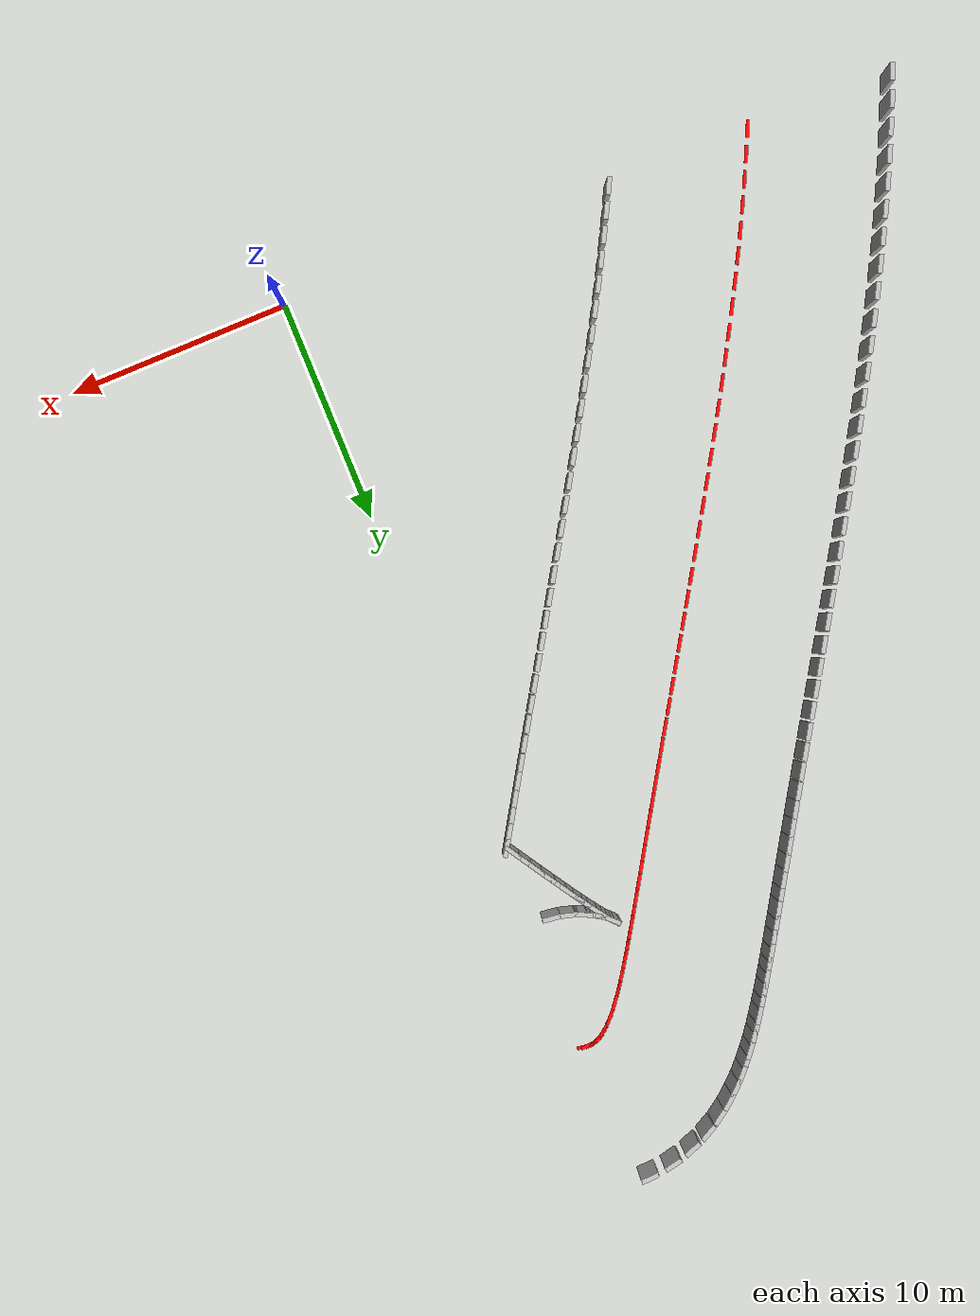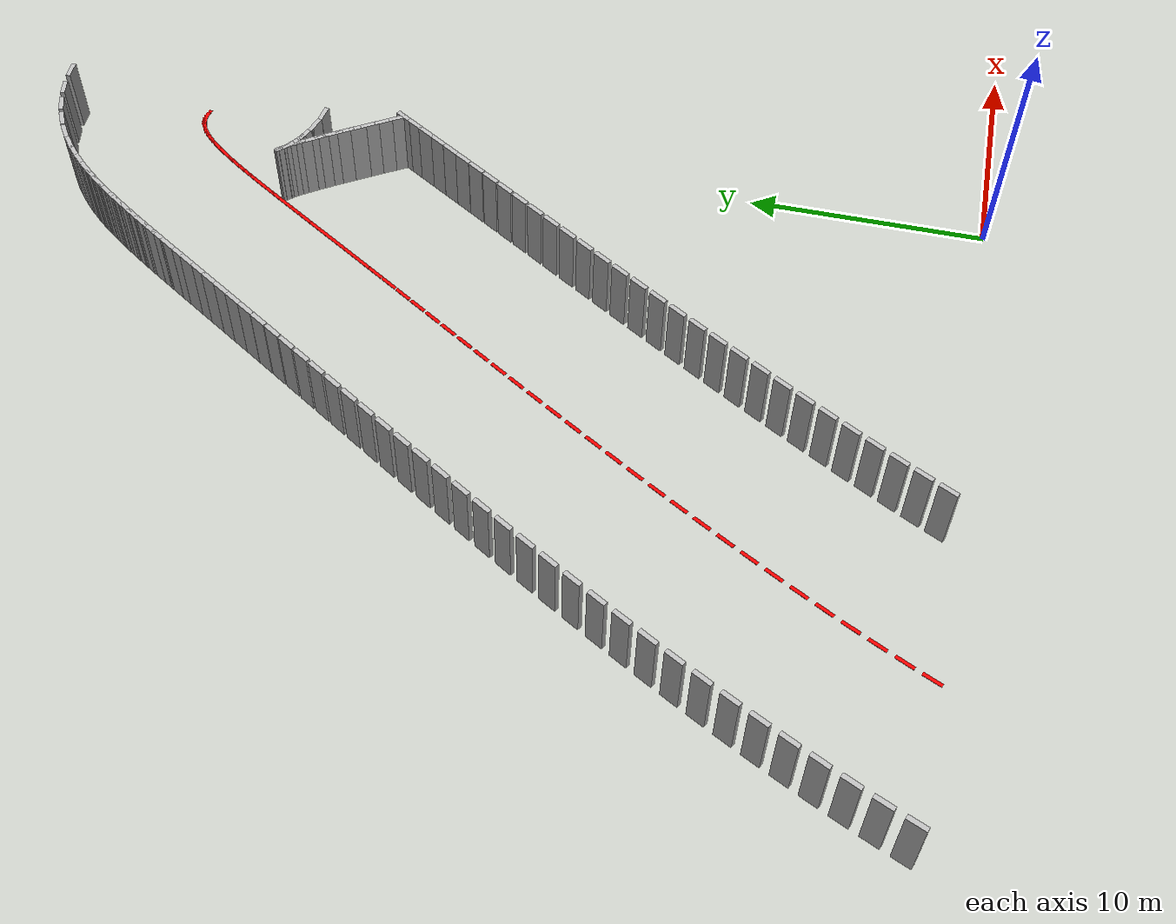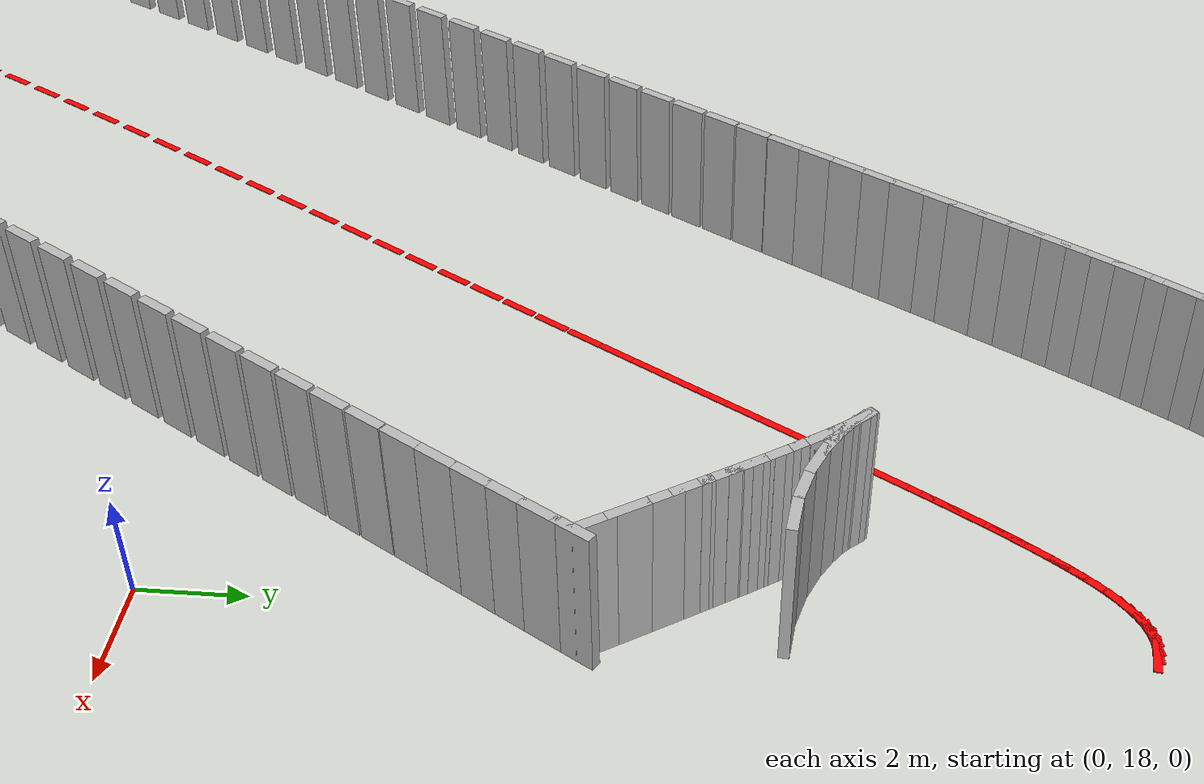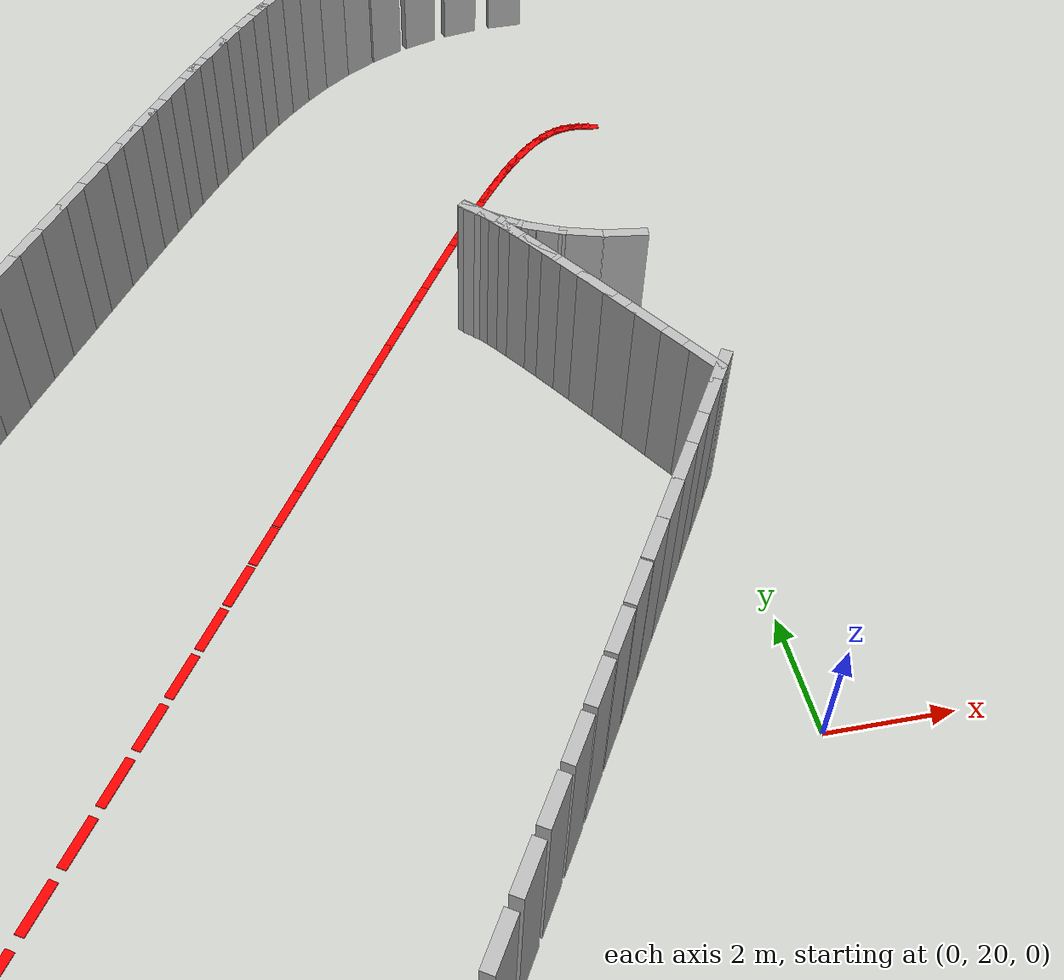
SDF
<sdf version="1.7">
 <model name="track_walls">
  <static>true</static>
  <link name="left_108">
   <pose>-28.182 0.858 0.5 0 0 1.166</pose>
   <collision name="c"><geometry><box><size>0.8 0.2 3.0</size></box></geometry></collision>
   <visual name="v"><geometry><box><size>0.8 0.2 3.0</size></box></geometry></visual>
  </link>
  <link name="left_109">
   <pose>-27.703 1.950 0.5 0 0 1.150</pose>
   <collision name="c"><geometry><box><size>0.8 0.2 3.0</size></box></geometry></collision>
   <visual name="v"><geometry><box><size>0.8 0.2 3.0</size></box></geometry></visual>
  </link>
  <link name="left_110">
   <pose>-27.207 3.036 0.5 0 0 1.135</pose>
   <collision name="c"><geometry><box><size>0.8 0.2 3.0</size></box></geometry></collision>
   <visual name="v"><geometry><box><size>0.8 0.2 3.0</size></box></geometry></visual>
  </link>
  <link name="center_110">
   <pose>-21.768 0.502 0.010 0 0 1.135</pose>
   <visual name="v">
    <geometry><box><size>0.8 0.15 0.02</size></box></geometry>
    <material><ambient>1 0 0 1</ambient><diffuse>1 0 0 1</diffuse></material>
   </visual>
  </link>
  <link name="left_111">
   <pose>-26.695 4.114 0.5 0 0 1.121</pose>
   <collision name="c"><geometry><box><size>0.8 0.2 3.0</size></box></geometry></collision>
   <visual name="v"><geometry><box><size>0.8 0.2 3.0</size></box></geometry></visual>
  </link>
  <link name="center_111">
   <pose>-21.292 1.506 0.010 0 0 1.121</pose>
   <visual name="v">
    <geometry><box><size>0.8 0.15 0.02</size></box></geometry>
    <material><ambient>1 0 0 1</ambient><diffuse>1 0 0 1</diffuse></material>
   </visual>
  </link>
  <link name="left_112">
   <pose>-26.169 5.185 0.5 0 0 1.108</pose>
   <collision name="c"><geometry><box><size>0.8 0.2 3.0</size></box></geometry></collision>
   <visual name="v"><geometry><box><size>0.8 0.2 3.0</size></box></geometry></visual>
  </link>
  <link name="center_112">
   <pose>-20.800 2.508 0.010 0 0 1.108</pose>
   <visual name="v">
    <geometry><box><size>0.8 0.15 0.02</size></box></geometry>
    <material><ambient>1 0 0 1</ambient><diffuse>1 0 0 1</diffuse></material>
   </visual>
  </link>
  <link name="left_113">
   <pose>-25.631 6.249 0.5 0 0 1.097</pose>
   <collision name="c"><geometry><box><size>0.8 0.2 3.0</size></box></geometry></collision>
   <visual name="v"><geometry><box><size>0.8 0.2 3.0</size></box></geometry></visual>
  </link>
  <link name="right_113">
   <pose>-14.956 0.768 0.5 0 0 1.097</pose>
   <collision name="c"><geometry><box><size>0.8 0.2 3.0</size></box></geometry></collision>
   <visual name="v"><geometry><box><size>0.8 0.2 3.0</size></box></geometry></visual>
  </link>
  <link name="center_113">
   <pose>-20.293 3.509 0.010 0 0 1.097</pose>
   <visual name="v">
    <geometry><box><size>0.8 0.15 0.02</size></box></geometry>
    <material><ambient>1 0 0 1</ambient><diffuse>1 0 0 1</diffuse></material>
   </visual>
  </link>
  <link name="left_114">
   <pose>-25.082 7.304 0.5 0 0 1.086</pose>
   <collision name="c"><geometry><box><size>0.8 0.2 3.0</size></box></geometry></collision>
   <visual name="v"><geometry><box><size>0.8 0.2 3.0</size></box></geometry></visual>
  </link>
  <link name="right_114">
   <pose>-14.466 1.708 0.5 0 0 1.086</pose>
   <collision name="c"><geometry><box><size>0.8 0.2 3.0</size></box></geometry></collision>
   <visual name="v"><geometry><box><size>0.8 0.2 3.0</size></box></geometry></visual>
  </link>
  <link name="center_114">
   <pose>-19.774 4.506 0.010 0 0 1.086</pose>
   <visual name="v">
    <geometry><box><size>0.8 0.15 0.02</size></box></geometry>
    <material><ambient>1 0 0 1</ambient><diffuse>1 0 0 1</diffuse></material>
   </visual>
  </link>
  <link name="left_115">
   <pose>-24.523 8.350 0.5 0 0 1.076</pose>
   <collision name="c"><geometry><box><size>0.8 0.2 3.0</size></box></geometry></collision>
   <visual name="v"><geometry><box><size>0.8 0.2 3.0</size></box></geometry></visual>
  </link>
  <link name="right_115">
   <pose>-13.964 2.650 0.5 0 0 1.076</pose>
   <collision name="c"><geometry><box><size>0.8 0.2 3.0</size></box></geometry></collision>
   <visual name="v"><geometry><box><size>0.8 0.2 3.0</size></box></geometry></visual>
  </link>
  <link name="center_115">
   <pose>-19.244 5.500 0.010 0 0 1.076</pose>
   <visual name="v">
    <geometry><box><size>0.8 0.15 0.02</size></box></geometry>
    <material><ambient>1 0 0 1</ambient><diffuse>1 0 0 1</diffuse></material>
   </visual>
  </link>
  <link name="left_116">
   <pose>-23.957 9.387 0.5 0 0 1.067</pose>
   <collision name="c"><geometry><box><size>0.8 0.2 3.0</size></box></geometry></collision>
   <visual name="v"><geometry><box><size>0.8 0.2 3.0</size></box></geometry></visual>
  </link>
  <link name="right_116">
   <pose>-13.450 3.591 0.5 0 0 1.067</pose>
   <collision name="c"><geometry><box><size>0.8 0.2 3.0</size></box></geometry></collision>
   <visual name="v"><geometry><box><size>0.8 0.2 3.0</size></box></geometry></visual>
  </link>
  <link name="center_116">
   <pose>-18.703 6.489 0.010 0 0 1.067</pose>
   <visual name="v">
    <geometry><box><size>0.8 0.15 0.02</size></box></geometry>
    <material><ambient>1 0 0 1</ambient><diffuse>1 0 0 1</diffuse></material>
   </visual>
  </link>
  <link name="left_117">
   <pose>-23.385 10.415 0.5 0 0 1.058</pose>
   <collision name="c"><geometry><box><size>0.8 0.2 3.0</size></box></geometry></collision>
   <visual name="v"><geometry><box><size>0.8 0.2 3.0</size></box></geometry></visual>
  </link>
  <link name="right_117">
   <pose>-12.926 4.532 0.5 0 0 1.058</pose>
   <collision name="c"><geometry><box><size>0.8 0.2 3.0</size></box></geometry></collision>
   <visual name="v"><geometry><box><size>0.8 0.2 3.0</size></box></geometry></visual>
  </link>
  <link name="center_117">
   <pose>-18.155 7.473 0.010 0 0 1.058</pose>
   <visual name="v">
    <geometry><box><size>0.8 0.15 0.02</size></box></geometry>
    <material><ambient>1 0 0 1</ambient><diffuse>1 0 0 1</diffuse></material>
   </visual>
  </link>
  <link name="left_118">
   <pose>-22.807 11.432 0.5 0 0 1.051</pose>
   <collision name="c"><geometry><box><size>0.8 0.2 3.0</size></box></geometry></collision>
   <visual name="v"><geometry><box><size>0.8 0.2 3.0</size></box></geometry></visual>
  </link>
  <link name="right_118">
   <pose>-12.393 5.470 0.5 0 0 1.051</pose>
   <collision name="c"><geometry><box><size>0.8 0.2 3.0</size></box></geometry></collision>
   <visual name="v"><geometry><box><size>0.8 0.2 3.0</size></box></geometry></visual>
  </link>
  <link name="center_118">
   <pose>-17.600 8.451 0.010 0 0 1.051</pose>
   <visual name="v">
    <geometry><box><size>0.8 0.15 0.02</size></box></geometry>
    <material><ambient>1 0 0 1</ambient><diffuse>1 0 0 1</diffuse></material>
   </visual>
  </link>
  <link name="left_119">
   <pose>-22.227 12.438 0.5 0 0 1.044</pose>
   <collision name="c"><geometry><box><size>0.8 0.2 3.0</size></box></geometry></collision>
   <visual name="v"><geometry><box><size>0.8 0.2 3.0</size></box></geometry></visual>
  </link>
  <link name="right_119">
   <pose>-11.853 6.406 0.5 0 0 1.044</pose>
   <collision name="c"><geometry><box><size>0.8 0.2 3.0</size></box></geometry></collision>
   <visual name="v"><geometry><box><size>0.8 0.2 3.0</size></box></geometry></visual>
  </link>
  <link name="center_119">
   <pose>-17.040 9.422 0.010 0 0 1.044</pose>
   <visual name="v">
    <geometry><box><size>0.8 0.15 0.02</size></box></geometry>
    <material><ambient>1 0 0 1</ambient><diffuse>1 0 0 1</diffuse></material>
   </visual>
  </link>
  <link name="left_120">
   <pose>-21.644 13.432 0.5 0 0 1.038</pose>
   <collision name="c"><geometry><box><size>0.8 0.2 3.0</size></box></geometry></collision>
   <visual name="v"><geometry><box><size>0.8 0.2 3.0</size></box></geometry></visual>
  </link>
  <link name="right_120">
   <pose>-11.307 7.338 0.5 0 0 1.038</pose>
   <collision name="c"><geometry><box><size>0.8 0.2 3.0</size></box></geometry></collision>
   <visual name="v"><geometry><box><size>0.8 0.2 3.0</size></box></geometry></visual>
  </link>
  <link name="center_120">
   <pose>-16.476 10.385 0.010 0 0 1.038</pose>
   <visual name="v">
    <geometry><box><size>0.8 0.15 0.02</size></box></geometry>
    <material><ambient>1 0 0 1</ambient><diffuse>1 0 0 1</diffuse></material>
   </visual>
  </link>
  <link name="left_121">
   <pose>-21.061 14.415 0.5 0 0 1.033</pose>
   <collision name="c"><geometry><box><size>0.8 0.2 3.0</size></box></geometry></collision>
   <visual name="v"><geometry><box><size>0.8 0.2 3.0</size></box></geometry></visual>
  </link>
  <link name="right_121">
   <pose>-10.757 8.264 0.5 0 0 1.033</pose>
   <collision name="c"><geometry><box><size>0.8 0.2 3.0</size></box></geometry></collision>
   <visual name="v"><geometry><box><size>0.8 0.2 3.0</size></box></geometry></visual>
  </link>
  <link name="center_121">
   <pose>-15.909 11.339 0.010 0 0 1.033</pose>
   <visual name="v">
    <geometry><box><size>0.8 0.15 0.02</size></box></geometry>
    <material><ambient>1 0 0 1</ambient><diffuse>1 0 0 1</diffuse></material>
   </visual>
  </link>
  <link name="left_122">
   <pose>-20.479 15.384 0.5 0 0 1.028</pose>
   <collision name="c"><geometry><box><size>0.8 0.2 3.0</size></box></geometry></collision>
   <visual name="v"><geometry><box><size>0.8 0.2 3.0</size></box></geometry></visual>
  </link>
  <link name="right_122">
   <pose>-10.204 9.185 0.5 0 0 1.028</pose>
   <collision name="c"><geometry><box><size>0.8 0.2 3.0</size></box></geometry></collision>
   <visual name="v"><geometry><box><size>0.8 0.2 3.0</size></box></geometry></visual>
  </link>
  <link name="center_122">
   <pose>-15.342 12.285 0.010 0 0 1.028</pose>
   <visual name="v">
    <geometry><box><size>0.8 0.15 0.02</size></box></geometry>
    <material><ambient>1 0 0 1</ambient><diffuse>1 0 0 1</diffuse></material>
   </visual>
  </link>
  <link name="left_123">
   <pose>-19.899 16.341 0.5 0 0 1.024</pose>
   <collision name="c"><geometry><box><size>0.8 0.2 3.0</size></box></geometry></collision>
   <visual name="v"><geometry><box><size>0.8 0.2 3.0</size></box></geometry></visual>
  </link>
  <link name="right_123">
   <pose>-9.650 10.099 0.5 0 0 1.024</pose>
   <collision name="c"><geometry><box><size>0.8 0.2 3.0</size></box></geometry></collision>
   <visual name="v"><geometry><box><size>0.8 0.2 3.0</size></box></geometry></visual>
  </link>
  <link name="center_123">
   <pose>-14.775 13.220 0.010 0 0 1.024</pose>
   <visual name="v">
    <geometry><box><size>0.8 0.15 0.02</size></box></geometry>
    <material><ambient>1 0 0 1</ambient><diffuse>1 0 0 1</diffuse></material>
   </visual>
  </link>
  <link name="left_124">
   <pose>-19.322 17.284 0.5 0 0 1.020</pose>
   <collision name="c"><geometry><box><size>0.8 0.2 3.0</size></box></geometry></collision>
   <visual name="v"><geometry><box><size>0.8 0.2 3.0</size></box></geometry></visual>
  </link>
  <link name="right_124">
   <pose>-9.096 11.004 0.5 0 0 1.020</pose>
   <collision name="c"><geometry><box><size>0.8 0.2 3.0</size></box></geometry></collision>
   <visual name="v"><geometry><box><size>0.8 0.2 3.0</size></box></geometry></visual>
  </link>
  <link name="center_124">
   <pose>-14.209 14.144 0.010 0 0 1.020</pose>
   <visual name="v">
    <geometry><box><size>0.8 0.15 0.02</size></box></geometry>
    <material><ambient>1 0 0 1</ambient><diffuse>1 0 0 1</diffuse></material>
   </visual>
  </link>
  <link name="left_125">
   <pose>-18.750 18.212 0.5 0 0 1.017</pose>
   <collision name="c"><geometry><box><size>0.8 0.2 3.0</size></box></geometry></collision>
   <visual name="v"><geometry><box><size>0.8 0.2 3.0</size></box></geometry></visual>
  </link>
  <link name="right_125">
   <pose>-8.544 11.901 0.5 0 0 1.017</pose>
   <collision name="c"><geometry><box><size>0.8 0.2 3.0</size></box></geometry></collision>
   <visual name="v"><geometry><box><size>0.8 0.2 3.0</size></box></geometry></visual>
  </link>
  <link name="center_125">
   <pose>-13.647 15.057 0.010 0 0 1.017</pose>
   <visual name="v">
    <geometry><box><size>0.8 0.15 0.02</size></box></geometry>
    <material><ambient>1 0 0 1</ambient><diffuse>1 0 0 1</diffuse></material>
   </visual>
  </link>
  <link name="left_126">
   <pose>-18.183 19.126 0.5 0 0 1.014</pose>
   <collision name="c"><geometry><box><size>0.8 0.2 3.0</size></box></geometry></collision>
   <visual name="v"><geometry><box><size>0.8 0.2 3.0</size></box></geometry></visual>
  </link>
  <link name="right_126">
   <pose>-7.993 12.788 0.5 0 0 1.014</pose>
   <collision name="c"><geometry><box><size>0.8 0.2 3.0</size></box></geometry></collision>
   <visual name="v"><geometry><box><size>0.8 0.2 3.0</size></box></geometry></visual>
  </link>
  <link name="center_126">
   <pose>-13.088 15.957 0.010 0 0 1.014</pose>
   <visual name="v">
    <geometry><box><size>0.8 0.15 0.02</size></box></geometry>
    <material><ambient>1 0 0 1</ambient><diffuse>1 0 0 1</diffuse></material>
   </visual>
  </link>
  <link name="left_127">
   <pose>-17.623 20.023 0.5 0 0 1.012</pose>
   <collision name="c"><geometry><box><size>0.8 0.2 3.0</size></box></geometry></collision>
   <visual name="v"><geometry><box><size>0.8 0.2 3.0</size></box></geometry></visual>
  </link>
  <link name="right_127">
   <pose>-7.447 13.664 0.5 0 0 1.012</pose>
   <collision name="c"><geometry><box><size>0.8 0.2 3.0</size></box></geometry></collision>
   <visual name="v"><geometry><box><size>0.8 0.2 3.0</size></box></geometry></visual>
  </link>
  <link name="center_127">
   <pose>-12.535 16.844 0.010 0 0 1.012</pose>
   <visual name="v">
    <geometry><box><size>0.8 0.15 0.02</size></box></geometry>
    <material><ambient>1 0 0 1</ambient><diffuse>1 0 0 1</diffuse></material>
   </visual>
  </link>
  <link name="left_128">
   <pose>-17.071 20.905 0.5 0 0 1.011</pose>
   <collision name="c"><geometry><box><size>0.8 0.2 3.0</size></box></geometry></collision>
   <visual name="v"><geometry><box><size>0.8 0.2 3.0</size></box></geometry></visual>
  </link>
  <link name="right_128">
   <pose>-6.905 14.529 0.5 0 0 1.011</pose>
   <collision name="c"><geometry><box><size>0.8 0.2 3.0</size></box></geometry></collision>
   <visual name="v"><geometry><box><size>0.8 0.2 3.0</size></box></geometry></visual>
  </link>
  <link name="center_128">
   <pose>-11.988 17.717 0.010 0 0 1.011</pose>
   <visual name="v">
    <geometry><box><size>0.8 0.15 0.02</size></box></geometry>
    <material><ambient>1 0 0 1</ambient><diffuse>1 0 0 1</diffuse></material>
   </visual>
  </link>
  <link name="left_129">
   <pose>-16.528 21.770 0.5 0 0 1.009</pose>
   <collision name="c"><geometry><box><size>0.8 0.2 3.0</size></box></geometry></collision>
   <visual name="v"><geometry><box><size>0.8 0.2 3.0</size></box></geometry></visual>
  </link>
  <link name="right_129">
   <pose>-6.370 15.381 0.5 0 0 1.009</pose>
   <collision name="c"><geometry><box><size>0.8 0.2 3.0</size></box></geometry></collision>
   <visual name="v"><geometry><box><size>0.8 0.2 3.0</size></box></geometry></visual>
  </link>
  <link name="center_129">
   <pose>-11.449 18.576 0.010 0 0 1.009</pose>
   <visual name="v">
    <geometry><box><size>0.8 0.15 0.02</size></box></geometry>
    <material><ambient>1 0 0 1</ambient><diffuse>1 0 0 1</diffuse></material>
   </visual>
  </link>
  <link name="left_130">
   <pose>-15.994 22.618 0.5 0 0 1.008</pose>
   <collision name="c"><geometry><box><size>0.8 0.2 3.0</size></box></geometry></collision>
   <visual name="v"><geometry><box><size>0.8 0.2 3.0</size></box></geometry></visual>
  </link>
  <link name="right_130">
   <pose>-5.842 16.220 0.5 0 0 1.008</pose>
   <collision name="c"><geometry><box><size>0.8 0.2 3.0</size></box></geometry></collision>
   <visual name="v"><geometry><box><size>0.8 0.2 3.0</size></box></geometry></visual>
  </link>
  <link name="center_130">
   <pose>-10.918 19.419 0.010 0 0 1.008</pose>
   <visual name="v">
    <geometry><box><size>0.8 0.15 0.02</size></box></geometry>
    <material><ambient>1 0 0 1</ambient><diffuse>1 0 0 1</diffuse></material>
   </visual>
  </link>
  <link name="left_131">
   <pose>-15.470 23.448 0.5 0 0 1.008</pose>
   <collision name="c"><geometry><box><size>0.8 0.2 3.0</size></box></geometry></collision>
   <visual name="v"><geometry><box><size>0.8 0.2 3.0</size></box></geometry></visual>
  </link>
  <link name="right_131">
   <pose>-5.322 17.044 0.5 0 0 1.008</pose>
   <collision name="c"><geometry><box><size>0.8 0.2 3.0</size></box></geometry></collision>
   <visual name="v"><geometry><box><size>0.8 0.2 3.0</size></box></geometry></visual>
  </link>
  <link name="center_131">
   <pose>-10.396 20.246 0.010 0 0 1.008</pose>
   <visual name="v">
    <geometry><box><size>0.8 0.15 0.02</size></box></geometry>
    <material><ambient>1 0 0 1</ambient><diffuse>1 0 0 1</diffuse></material>
   </visual>
  </link>
  <link name="left_132">
   <pose>-14.958 24.260 0.5 0 0 1.008</pose>
   <collision name="c"><geometry><box><size>0.8 0.2 3.0</size></box></geometry></collision>
   <visual name="v"><geometry><box><size>0.8 0.2 3.0</size></box></geometry></visual>
  </link>
  <link name="right_132">
   <pose>-4.811 17.854 0.5 0 0 1.008</pose>
   <collision name="c"><geometry><box><size>0.8 0.2 3.0</size></box></geometry></collision>
   <visual name="v"><geometry><box><size>0.8 0.2 3.0</size></box></geometry></visual>
  </link>
  <link name="center_132">
   <pose>-9.884 21.057 0.010 0 0 1.008</pose>
   <visual name="v">
    <geometry><box><size>0.8 0.15 0.02</size></box></geometry>
    <material><ambient>1 0 0 1</ambient><diffuse>1 0 0 1</diffuse></material>
   </visual>
  </link>
  <link name="left_133">
   <pose>-14.457 25.053 0.5 0 0 1.008</pose>
   <collision name="c"><geometry><box><size>0.8 0.2 3.0</size></box></geometry></collision>
   <visual name="v"><geometry><box><size>0.8 0.2 3.0</size></box></geometry></visual>
  </link>
  <link name="right_133">
   <pose>-4.310 18.647 0.5 0 0 1.008</pose>
   <collision name="c"><geometry><box><size>0.8 0.2 3.0</size></box></geometry></collision>
   <visual name="v"><geometry><box><size>0.8 0.2 3.0</size></box></geometry></visual>
  </link>
  <link name="center_133">
   <pose>-9.383 21.850 0.010 0 0 1.008</pose>
   <visual name="v">
    <geometry><box><size>0.8 0.15 0.02</size></box></geometry>
    <material><ambient>1 0 0 1</ambient><diffuse>1 0 0 1</diffuse></material>
   </visual>
  </link>
  <link name="left_134">
   <pose>-13.968 25.827 0.5 0 0 1.008</pose>
   <collision name="c"><geometry><box><size>0.8 0.2 3.0</size></box></geometry></collision>
   <visual name="v"><geometry><box><size>0.8 0.2 3.0</size></box></geometry></visual>
  </link>
  <link name="right_134">
   <pose>-3.819 19.424 0.5 0 0 1.008</pose>
   <collision name="c"><geometry><box><size>0.8 0.2 3.0</size></box></geometry></collision>
   <visual name="v"><geometry><box><size>0.8 0.2 3.0</size></box></geometry></visual>
  </link>
  <link name="center_134">
   <pose>-8.894 22.626 0.010 0 0 1.008</pose>
   <visual name="v">
    <geometry><box><size>0.8 0.15 0.02</size></box></geometry>
    <material><ambient>1 0 0 1</ambient><diffuse>1 0 0 1</diffuse></material>
   </visual>
  </link>
  <link name="left_135">
   <pose>-13.492 26.581 0.5 0 0 1.008</pose>
   <collision name="c"><geometry><box><size>0.8 0.2 3.0</size></box></geometry></collision>
   <visual name="v"><geometry><box><size>0.8 0.2 3.0</size></box></geometry></visual>
  </link>
  <link name="right_135">
   <pose>-3.341 20.183 0.5 0 0 1.008</pose>
   <collision name="c"><geometry><box><size>0.8 0.2 3.0</size></box></geometry></collision>
   <visual name="v"><geometry><box><size>0.8 0.2 3.0</size></box></geometry></visual>
  </link>
  <link name="center_135">
   <pose>-8.417 23.382 0.010 0 0 1.008</pose>
   <visual name="v">
    <geometry><box><size>0.8 0.15 0.02</size></box></geometry>
    <material><ambient>1 0 0 1</ambient><diffuse>1 0 0 1</diffuse></material>
   </visual>
  </link>
  <link name="left_136">
   <pose>-13.030 27.316 0.5 0 0 1.009</pose>
   <collision name="c"><geometry><box><size>0.8 0.2 3.0</size></box></geometry></collision>
   <visual name="v"><geometry><box><size>0.8 0.2 3.0</size></box></geometry></visual>
  </link>
  <link name="right_136">
   <pose>-2.874 20.924 0.5 0 0 1.009</pose>
   <collision name="c"><geometry><box><size>0.8 0.2 3.0</size></box></geometry></collision>
   <visual name="v"><geometry><box><size>0.8 0.2 3.0</size></box></geometry></visual>
  </link>
  <link name="center_136">
   <pose>-7.952 24.120 0.010 0 0 1.009</pose>
   <visual name="v">
    <geometry><box><size>0.8 0.15 0.02</size></box></geometry>
    <material><ambient>1 0 0 1</ambient><diffuse>1 0 0 1</diffuse></material>
   </visual>
  </link>
  <link name="left_137">
   <pose>-12.581 28.030 0.5 0 0 1.010</pose>
   <collision name="c"><geometry><box><size>0.8 0.2 3.0</size></box></geometry></collision>
   <visual name="v"><geometry><box><size>0.8 0.2 3.0</size></box></geometry></visual>
  </link>
  <link name="right_137">
   <pose>-2.421 21.645 0.5 0 0 1.010</pose>
   <collision name="c"><geometry><box><size>0.8 0.2 3.0</size></box></geometry></collision>
   <visual name="v"><geometry><box><size>0.8 0.2 3.0</size></box></geometry></visual>
  </link>
  <link name="center_137">
   <pose>-7.501 24.837 0.010 0 0 1.010</pose>
   <visual name="v">
    <geometry><box><size>0.8 0.15 0.02</size></box></geometry>
    <material><ambient>1 0 0 1</ambient><diffuse>1 0 0 1</diffuse></material>
   </visual>
  </link>
  <link name="left_138">
   <pose>-12.145 28.723 0.5 0 0 1.010</pose>
   <collision name="c"><geometry><box><size>0.8 0.2 3.0</size></box></geometry></collision>
   <visual name="v"><geometry><box><size>0.8 0.2 3.0</size></box></geometry></visual>
  </link>
  <link name="right_138">
   <pose>-1.980 22.346 0.5 0 0 1.010</pose>
   <collision name="c"><geometry><box><size>0.8 0.2 3.0</size></box></geometry></collision>
   <visual name="v"><geometry><box><size>0.8 0.2 3.0</size></box></geometry></visual>
  </link>
  <link name="center_138">
   <pose>-7.063 25.535 0.010 0 0 1.010</pose>
   <visual name="v">
    <geometry><box><size>0.8 0.15 0.02</size></box></geometry>
    <material><ambient>1 0 0 1</ambient><diffuse>1 0 0 1</diffuse></material>
   </visual>
  </link>
  <link name="left_139">
   <pose>-11.724 29.396 0.5 0 0 1.011</pose>
   <collision name="c"><geometry><box><size>0.8 0.2 3.0</size></box></geometry></collision>
   <visual name="v"><geometry><box><size>0.8 0.2 3.0</size></box></geometry></visual>
  </link>
  <link name="right_139">
   <pose>-1.554 23.025 0.5 0 0 1.011</pose>
   <collision name="c"><geometry><box><size>0.8 0.2 3.0</size></box></geometry></collision>
   <visual name="v"><geometry><box><size>0.8 0.2 3.0</size></box></geometry></visual>
  </link>
  <link name="center_139">
   <pose>-6.639 26.211 0.010 0 0 1.011</pose>
   <visual name="v">
    <geometry><box><size>0.8 0.15 0.02</size></box></geometry>
    <material><ambient>1 0 0 1</ambient><diffuse>1 0 0 1</diffuse></material>
   </visual>
  </link>
  <link name="left_140">
   <pose>-11.316 30.047 0.5 0 0 1.012</pose>
   <collision name="c"><geometry><box><size>0.8 0.2 3.0</size></box></geometry></collision>
   <visual name="v"><geometry><box><size>0.8 0.2 3.0</size></box></geometry></visual>
  </link>
  <link name="right_140">
   <pose>-1.143 23.683 0.5 0 0 1.012</pose>
   <collision name="c"><geometry><box><size>0.8 0.2 3.0</size></box></geometry></collision>
   <visual name="v"><geometry><box><size>0.8 0.2 3.0</size></box></geometry></visual>
  </link>
  <link name="center_140">
   <pose>-6.229 26.865 0.010 0 0 1.012</pose>
   <visual name="v">
    <geometry><box><size>0.8 0.15 0.02</size></box></geometry>
    <material><ambient>1 0 0 1</ambient><diffuse>1 0 0 1</diffuse></material>
   </visual>
  </link>
  <link name="left_141">
   <pose>-10.922 30.678 0.5 0 0 1.012</pose>
   <collision name="c"><geometry><box><size>0.8 0.2 3.0</size></box></geometry></collision>
   <visual name="v"><geometry><box><size>0.8 0.2 3.0</size></box></geometry></visual>
  </link>
  <link name="right_141">
   <pose>-0.746 24.318 0.5 0 0 1.012</pose>
   <collision name="c"><geometry><box><size>0.8 0.2 3.0</size></box></geometry></collision>
   <visual name="v"><geometry><box><size>0.8 0.2 3.0</size></box></geometry></visual>
  </link>
  <link name="center_141">
   <pose>-5.834 27.498 0.010 0 0 1.012</pose>
   <visual name="v">
    <geometry><box><size>0.8 0.15 0.02</size></box></geometry>
    <material><ambient>1 0 0 1</ambient><diffuse>1 0 0 1</diffuse></material>
   </visual>
  </link>
  <link name="left_142">
   <pose>-10.541 31.287 0.5 0 0 1.012</pose>
   <collision name="c"><geometry><box><size>0.8 0.2 3.0</size></box></geometry></collision>
   <visual name="v"><geometry><box><size>0.8 0.2 3.0</size></box></geometry></visual>
  </link>
  <link name="right_142">
   <pose>-0.364 24.928 0.5 0 0 1.012</pose>
   <collision name="c"><geometry><box><size>0.8 0.2 3.0</size></box></geometry></collision>
   <visual name="v"><geometry><box><size>0.8 0.2 3.0</size></box></geometry></visual>
  </link>
  <link name="center_142">
   <pose>-5.453 28.108 0.010 0 0 1.012</pose>
   <visual name="v">
    <geometry><box><size>0.8 0.15 0.02</size></box></geometry>
    <material><ambient>1 0 0 1</ambient><diffuse>1 0 0 1</diffuse></material>
   </visual>
  </link>
  <link name="left_143">
   <pose>-10.174 31.875 0.5 0 0 1.012</pose>
   <collision name="c"><geometry><box><size>0.8 0.2 3.0</size></box></geometry></collision>
   <visual name="v"><geometry><box><size>0.8 0.2 3.0</size></box></geometry></visual>
  </link>
  <link name="right_143">
   <pose>0.001 25.513 0.5 0 0 1.012</pose>
   <collision name="c"><geometry><box><size>0.8 0.2 3.0</size></box></geometry></collision>
   <visual name="v"><geometry><box><size>0.8 0.2 3.0</size></box></geometry></visual>
  </link>
  <link name="center_143">
   <pose>-5.086 28.694 0.010 0 0 1.012</pose>
   <visual name="v">
    <geometry><box><size>0.8 0.15 0.02</size></box></geometry>
    <material><ambient>1 0 0 1</ambient><diffuse>1 0 0 1</diffuse></material>
   </visual>
  </link>
  <link name="left_144">
   <pose>-9.819 32.442 0.5 0 0 1.011</pose>
   <collision name="c"><geometry><box><size>0.8 0.2 3.0</size></box></geometry></collision>
   <visual name="v"><geometry><box><size>0.8 0.2 3.0</size></box></geometry></visual>
  </link>
  <link name="center_144">
   <pose>-4.734 29.257 0.010 0 0 1.011</pose>
   <visual name="v">
    <geometry><box><size>0.8 0.15 0.02</size></box></geometry>
    <material><ambient>1 0 0 1</ambient><diffuse>1 0 0 1</diffuse></material>
   </visual>
  </link>
  <link name="left_145">
   <pose>-9.476 32.989 0.5 0 0 1.010</pose>
   <collision name="c"><geometry><box><size>0.8 0.2 3.0</size></box></geometry></collision>
   <visual name="v"><geometry><box><size>0.8 0.2 3.0</size></box></geometry></visual>
  </link>
  <link name="center_145">
   <pose>-4.396 29.796 0.010 0 0 1.010</pose>
   <visual name="v">
    <geometry><box><size>0.8 0.15 0.02</size></box></geometry>
    <material><ambient>1 0 0 1</ambient><diffuse>1 0 0 1</diffuse></material>
   </visual>
  </link>
  <link name="left_146">
   <pose>-9.144 33.516 0.5 0 0 1.007</pose>
   <collision name="c"><geometry><box><size>0.8 0.2 3.0</size></box></geometry></collision>
   <visual name="v"><geometry><box><size>0.8 0.2 3.0</size></box></geometry></visual>
  </link>
  <link name="center_146">
   <pose>-4.072 30.311 0.010 0 0 1.007</pose>
   <visual name="v">
    <geometry><box><size>0.8 0.15 0.02</size></box></geometry>
    <material><ambient>1 0 0 1</ambient><diffuse>1 0 0 1</diffuse></material>
   </visual>
  </link>
  <link name="left_147">
   <pose>-8.823 34.023 0.5 0 0 1.004</pose>
   <collision name="c"><geometry><box><size>0.8 0.2 3.0</size></box></geometry></collision>
   <visual name="v"><geometry><box><size>0.8 0.2 3.0</size></box></geometry></visual>
  </link>
  <link name="center_147">
   <pose>-3.762 30.800 0.010 0 0 1.004</pose>
   <visual name="v">
    <geometry><box><size>0.8 0.15 0.02</size></box></geometry>
    <material><ambient>1 0 0 1</ambient><diffuse>1 0 0 1</diffuse></material>
   </visual>
  </link>
  <link name="left_148">
   <pose>-8.511 34.511 0.5 0 0 0.999</pose>
   <collision name="c"><geometry><box><size>0.8 0.2 3.0</size></box></geometry></collision>
   <visual name="v"><geometry><box><size>0.8 0.2 3.0</size></box></geometry></visual>
  </link>
  <link name="center_148">
   <pose>-3.465 31.265 0.010 0 0 0.999</pose>
   <visual name="v">
    <geometry><box><size>0.8 0.15 0.02</size></box></geometry>
    <material><ambient>1 0 0 1</ambient><diffuse>1 0 0 1</diffuse></material>
   </visual>
  </link>
  <link name="left_149">
   <pose>-8.206 34.982 0.5 0 0 0.993</pose>
   <collision name="c"><geometry><box><size>0.8 0.2 3.0</size></box></geometry></collision>
   <visual name="v"><geometry><box><size>0.8 0.2 3.0</size></box></geometry></visual>
  </link>
  <link name="center_149">
   <pose>-3.181 31.703 0.010 0 0 0.993</pose>
   <visual name="v">
    <geometry><box><size>0.8 0.15 0.02</size></box></geometry>
    <material><ambient>1 0 0 1</ambient><diffuse>1 0 0 1</diffuse></material>
   </visual>
  </link>
  <link name="left_150">
   <pose>-7.906 35.437 0.5 0 0 0.984</pose>
   <collision name="c"><geometry><box><size>0.8 0.2 3.0</size></box></geometry></collision>
   <visual name="v"><geometry><box><size>0.8 0.2 3.0</size></box></geometry></visual>
  </link>
  <link name="center_150">
   <pose>-2.909 32.115 0.010 0 0 0.984</pose>
   <visual name="v">
    <geometry><box><size>0.8 0.15 0.02</size></box></geometry>
    <material><ambient>1 0 0 1</ambient><diffuse>1 0 0 1</diffuse></material>
   </visual>
  </link>
  <link name="left_151">
   <pose>-7.610 35.878 0.5 0 0 0.973</pose>
   <collision name="c"><geometry><box><size>0.8 0.2 3.0</size></box></geometry></collision>
   <visual name="v"><geometry><box><size>0.8 0.2 3.0</size></box></geometry></visual>
  </link>
  <link name="center_151">
   <pose>-2.650 32.501 0.010 0 0 0.973</pose>
   <visual name="v">
    <geometry><box><size>0.8 0.15 0.02</size></box></geometry>
    <material><ambient>1 0 0 1</ambient><diffuse>1 0 0 1</diffuse></material>
   </visual>
  </link>
  <link name="left_152">
   <pose>-7.314 36.306 0.5 0 0 0.959</pose>
   <collision name="c"><geometry><box><size>0.8 0.2 3.0</size></box></geometry></collision>
   <visual name="v"><geometry><box><size>0.8 0.2 3.0</size></box></geometry></visual>
  </link>
  <link name="center_152">
   <pose>-2.402 32.861 0.010 0 0 0.959</pose>
   <visual name="v">
    <geometry><box><size>0.8 0.15 0.02</size></box></geometry>
    <material><ambient>1 0 0 1</ambient><diffuse>1 0 0 1</diffuse></material>
   </visual>
  </link>
  <link name="left_153">
   <pose>-7.015 36.726 0.5 0 0 0.941</pose>
   <collision name="c"><geometry><box><size>0.8 0.2 3.0</size></box></geometry></collision>
   <visual name="v"><geometry><box><size>0.8 0.2 3.0</size></box></geometry></visual>
  </link>
  <link name="center_153">
   <pose>-2.165 33.193 0.010 0 0 0.941</pose>
   <visual name="v">
    <geometry><box><size>0.8 0.15 0.02</size></box></geometry>
    <material><ambient>1 0 0 1</ambient><diffuse>1 0 0 1</diffuse></material>
   </visual>
  </link>
  <link name="left_154">
   <pose>-6.706 37.140 0.5 0 0 0.918</pose>
   <collision name="c"><geometry><box><size>0.8 0.2 3.0</size></box></geometry></collision>
   <visual name="v"><geometry><box><size>0.8 0.2 3.0</size></box></geometry></visual>
  </link>
  <link name="center_154">
   <pose>-1.938 33.497 0.010 0 0 0.918</pose>
   <visual name="v">
    <geometry><box><size>0.8 0.15 0.02</size></box></geometry>
    <material><ambient>1 0 0 1</ambient><diffuse>1 0 0 1</diffuse></material>
   </visual>
  </link>
  <link name="left_155">
   <pose>-6.383 37.552 0.5 0 0 0.890</pose>
   <collision name="c"><geometry><box><size>0.8 0.2 3.0</size></box></geometry></collision>
   <visual name="v"><geometry><box><size>0.8 0.2 3.0</size></box></geometry></visual>
  </link>
  <link name="center_155">
   <pose>-1.721 33.775 0.010 0 0 0.890</pose>
   <visual name="v">
    <geometry><box><size>0.8 0.15 0.02</size></box></geometry>
    <material><ambient>1 0 0 1</ambient><diffuse>1 0 0 1</diffuse></material>
   </visual>
  </link>
  <link name="left_156">
   <pose>-6.035 37.966 0.5 0 0 0.854</pose>
   <collision name="c"><geometry><box><size>0.8 0.2 3.0</size></box></geometry></collision>
   <visual name="v"><geometry><box><size>0.8 0.2 3.0</size></box></geometry></visual>
  </link>
  <link name="center_156">
   <pose>-1.512 34.024 0.010 0 0 0.854</pose>
   <visual name="v">
    <geometry><box><size>0.8 0.15 0.02</size></box></geometry>
    <material><ambient>1 0 0 1</ambient><diffuse>1 0 0 1</diffuse></material>
   </visual>
  </link>
  <link name="left_157">
   <pose>-5.651 38.388 0.5 0 0 0.809</pose>
   <collision name="c"><geometry><box><size>0.8 0.2 3.0</size></box></geometry></collision>
   <visual name="v"><geometry><box><size>0.8 0.2 3.0</size></box></geometry></visual>
  </link>
  <link name="center_157">
   <pose>-1.310 34.246 0.010 0 0 0.809</pose>
   <visual name="v">
    <geometry><box><size>0.8 0.15 0.02</size></box></geometry>
    <material><ambient>1 0 0 1</ambient><diffuse>1 0 0 1</diffuse></material>
   </visual>
  </link>
  <link name="left_158">
   <pose>-5.215 38.820 0.5 0 0 0.752</pose>
   <collision name="c"><geometry><box><size>0.8 0.2 3.0</size></box></geometry></collision>
   <visual name="v"><geometry><box><size>0.8 0.2 3.0</size></box></geometry></visual>
  </link>
  <link name="center_158">
   <pose>-1.116 34.439 0.010 0 0 0.752</pose>
   <visual name="v">
    <geometry><box><size>0.8 0.15 0.02</size></box></geometry>
    <material><ambient>1 0 0 1</ambient><diffuse>1 0 0 1</diffuse></material>
   </visual>
  </link>
  <link name="left_159">
   <pose>-4.706 39.264 0.5 0 0 0.681</pose>
   <collision name="c"><geometry><box><size>0.8 0.2 3.0</size></box></geometry></collision>
   <visual name="v"><geometry><box><size>0.8 0.2 3.0</size></box></geometry></visual>
  </link>
  <link name="center_159">
   <pose>-0.928 34.604 0.010 0 0 0.681</pose>
   <visual name="v">
    <geometry><box><size>0.8 0.15 0.02</size></box></geometry>
    <material><ambient>1 0 0 1</ambient><diffuse>1 0 0 1</diffuse></material>
   </visual>
  </link>
  <link name="left_160">
   <pose>-4.098 39.716 0.5 0 0 0.593</pose>
   <collision name="c"><geometry><box><size>0.8 0.2 3.0</size></box></geometry></collision>
   <visual name="v"><geometry><box><size>0.8 0.2 3.0</size></box></geometry></visual>
  </link>
  <link name="center_160">
   <pose>-0.744 34.740 0.010 0 0 0.593</pose>
   <visual name="v">
    <geometry><box><size>0.8 0.15 0.02</size></box></geometry>
    <material><ambient>1 0 0 1</ambient><diffuse>1 0 0 1</diffuse></material>
   </visual>
  </link>
  <link name="left_161">
   <pose>-3.361 40.157 0.5 0 0 0.485</pose>
   <collision name="c"><geometry><box><size>0.8 0.2 3.0</size></box></geometry></collision>
   <visual name="v"><geometry><box><size>0.8 0.2 3.0</size></box></geometry></visual>
  </link>
  <link name="center_161">
   <pose>-0.565 34.848 0.010 0 0 0.485</pose>
   <visual name="v">
    <geometry><box><size>0.8 0.15 0.02</size></box></geometry>
    <material><ambient>1 0 0 1</ambient><diffuse>1 0 0 1</diffuse></material>
   </visual>
  </link>
  <link name="left_162">
   <pose>-2.474 40.553 0.5 0 0 0.355</pose>
   <collision name="c"><geometry><box><size>0.8 0.2 3.0</size></box></geometry></collision>
   <visual name="v"><geometry><box><size>0.8 0.2 3.0</size></box></geometry></visual>
  </link>
  <link name="center_162">
   <pose>-0.389 34.927 0.010 0 0 0.355</pose>
   <visual name="v">
    <geometry><box><size>0.8 0.15 0.02</size></box></geometry>
    <material><ambient>1 0 0 1</ambient><diffuse>1 0 0 1</diffuse></material>
   </visual>
  </link>
  <link name="left_163">
   <pose>-1.437 40.852 0.5 0 0 0.205</pose>
   <collision name="c"><geometry><box><size>0.8 0.2 3.0</size></box></geometry></collision>
   <visual name="v"><geometry><box><size>0.8 0.2 3.0</size></box></geometry></visual>
  </link>
  <link name="center_163">
   <pose>-0.216 34.977 0.010 0 0 0.205</pose>
   <visual name="v">
    <geometry><box><size>0.8 0.15 0.02</size></box></geometry>
    <material><ambient>1 0 0 1</ambient><diffuse>1 0 0 1</diffuse></material>
   </visual>
  </link>
  <link name="left_164">
   <pose>-0.294 40.994 0.5 0 0 0.042</pose>
   <collision name="c"><geometry><box><size>0.8 0.2 3.0</size></box></geometry></collision>
   <visual name="v"><geometry><box><size>0.8 0.2 3.0</size></box></geometry></visual>
  </link>
  <link name="center_164">
   <pose>-0.043 34.999 0.010 0 0 0.042</pose>
   <visual name="v">
    <geometry><box><size>0.8 0.15 0.02</size></box></geometry>
    <material><ambient>1 0 0 1</ambient><diffuse>1 0 0 1</diffuse></material>
   </visual>
  </link>
  <link name="right_165">
   <pose>-0.616 29.038 0.5 0 0 -0.125</pose>
   <collision name="c"><geometry><box><size>0.8 0.2 3.0</size></box></geometry></collision>
   <visual name="v"><geometry><box><size>0.8 0.2 3.0</size></box></geometry></visual>
  </link>
  <link name="center_165">
   <pose>0.129 34.992 0.010 0 0 -0.125</pose>
   <visual name="v">
    <geometry><box><size>0.8 0.15 0.02</size></box></geometry>
    <material><ambient>1 0 0 1</ambient><diffuse>1 0 0 1</diffuse></material>
   </visual>
  </link>
  <link name="right_166">
   <pose>-1.368 29.193 0.5 0 0 -0.282</pose>
   <collision name="c"><geometry><box><size>0.8 0.2 3.0</size></box></geometry></collision>
   <visual name="v"><geometry><box><size>0.8 0.2 3.0</size></box></geometry></visual>
  </link>
  <link name="right_167">
   <pose>-1.983 29.419 0.5 0 0 -0.422</pose>
   <collision name="c"><geometry><box><size>0.8 0.2 3.0</size></box></geometry></collision>
   <visual name="v"><geometry><box><size>0.8 0.2 3.0</size></box></geometry></visual>
  </link>
  <link name="right_168">
   <pose>-2.438 29.656 0.5 0 0 -0.542</pose>
   <collision name="c"><geometry><box><size>0.8 0.2 3.0</size></box></geometry></collision>
   <visual name="v"><geometry><box><size>0.8 0.2 3.0</size></box></geometry></visual>
  </link>
  <link name="right_169">
   <pose>-2.746 29.861 0.5 0 0 -0.640</pose>
   <collision name="c"><geometry><box><size>0.8 0.2 3.0</size></box></geometry></collision>
   <visual name="v"><geometry><box><size>0.8 0.2 3.0</size></box></geometry></visual>
  </link>
  <link name="right_170">
   <pose>-2.929 30.009 0.5 0 0 -0.719</pose>
   <collision name="c"><geometry><box><size>0.8 0.2 3.0</size></box></geometry></collision>
   <visual name="v"><geometry><box><size>0.8 0.2 3.0</size></box></geometry></visual>
  </link>
  <link name="right_171">
   <pose>-3.016 30.089 0.5 0 0 -0.782</pose>
   <collision name="c"><geometry><box><size>0.8 0.2 3.0</size></box></geometry></collision>
   <visual name="v"><geometry><box><size>0.8 0.2 3.0</size></box></geometry></visual>
  </link>
  <link name="right_172">
   <pose>-3.029 30.101 0.5 0 0 -0.833</pose>
   <collision name="c"><geometry><box><size>0.8 0.2 3.0</size></box></geometry></collision>
   <visual name="v"><geometry><box><size>0.8 0.2 3.0</size></box></geometry></visual>
  </link>
  <link name="right_173">
   <pose>-2.982 30.048 0.5 0 0 -0.873</pose>
   <collision name="c"><geometry><box><size>0.8 0.2 3.0</size></box></geometry></collision>
   <visual name="v"><geometry><box><size>0.8 0.2 3.0</size></box></geometry></visual>
  </link>
  <link name="right_174">
   <pose>-2.890 29.933 0.5 0 0 -0.905</pose>
   <collision name="c"><geometry><box><size>0.8 0.2 3.0</size></box></geometry></collision>
   <visual name="v"><geometry><box><size>0.8 0.2 3.0</size></box></geometry></visual>
  </link>
  <link name="right_175">
   <pose>-2.761 29.764 0.5 0 0 -0.930</pose>
   <collision name="c"><geometry><box><size>0.8 0.2 3.0</size></box></geometry></collision>
   <visual name="v"><geometry><box><size>0.8 0.2 3.0</size></box></geometry></visual>
  </link>
  <link name="right_176">
   <pose>-2.600 29.543 0.5 0 0 -0.951</pose>
   <collision name="c"><geometry><box><size>0.8 0.2 3.0</size></box></geometry></collision>
   <visual name="v"><geometry><box><size>0.8 0.2 3.0</size></box></geometry></visual>
  </link>
  <link name="right_177">
   <pose>-2.413 29.275 0.5 0 0 -0.967</pose>
   <collision name="c"><geometry><box><size>0.8 0.2 3.0</size></box></geometry></collision>
   <visual name="v"><geometry><box><size>0.8 0.2 3.0</size></box></geometry></visual>
  </link>
  <link name="right_178">
   <pose>-2.201 28.965 0.5 0 0 -0.979</pose>
   <collision name="c"><geometry><box><size>0.8 0.2 3.0</size></box></geometry></collision>
   <visual name="v"><geometry><box><size>0.8 0.2 3.0</size></box></geometry></visual>
  </link>
  <link name="right_179">
   <pose>-1.968 28.614 0.5 0 0 -0.989</pose>
   <collision name="c"><geometry><box><size>0.8 0.2 3.0</size></box></geometry></collision>
   <visual name="v"><geometry><box><size>0.8 0.2 3.0</size></box></geometry></visual>
  </link>
  <link name="right_180">
   <pose>-1.715 28.226 0.5 0 0 -0.996</pose>
   <collision name="c"><geometry><box><size>0.8 0.2 3.0</size></box></geometry></collision>
   <visual name="v"><geometry><box><size>0.8 0.2 3.0</size></box></geometry></visual>
  </link>
  <link name="right_181">
   <pose>-1.443 27.802 0.5 0 0 -1.002</pose>
   <collision name="c"><geometry><box><size>0.8 0.2 3.0</size></box></geometry></collision>
   <visual name="v"><geometry><box><size>0.8 0.2 3.0</size></box></geometry></visual>
  </link>
  <link name="right_182">
   <pose>-1.153 27.346 0.5 0 0 -1.006</pose>
   <collision name="c"><geometry><box><size>0.8 0.2 3.0</size></box></geometry></collision>
   <visual name="v"><geometry><box><size>0.8 0.2 3.0</size></box></geometry></visual>
  </link>
  <link name="right_183">
   <pose>-0.845 26.859 0.5 0 0 -1.009</pose>
   <collision name="c"><geometry><box><size>0.8 0.2 3.0</size></box></geometry></collision>
   <visual name="v"><geometry><box><size>0.8 0.2 3.0</size></box></geometry></visual>
  </link>
  <link name="right_184">
   <pose>-0.520 26.342 0.5 0 0 -1.011</pose>
   <collision name="c"><geometry><box><size>0.8 0.2 3.0</size></box></geometry></collision>
   <visual name="v"><geometry><box><size>0.8 0.2 3.0</size></box></geometry></visual>
  </link>
  <link name="right_185">
   <pose>-0.178 25.796 0.5 0 0 -1.012</pose>
   <collision name="c"><geometry><box><size>0.8 0.2 3.0</size></box></geometry></collision>
   <visual name="v"><geometry><box><size>0.8 0.2 3.0</size></box></geometry></visual>
  </link>
 </model>
</sdf>
